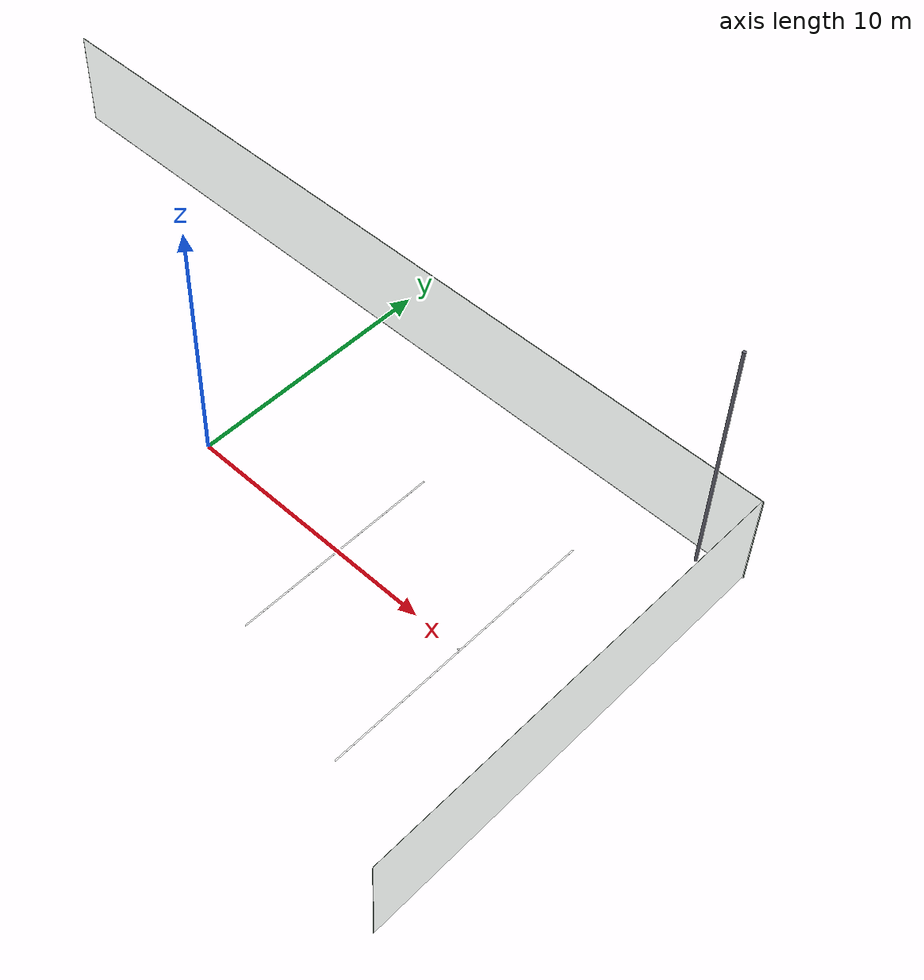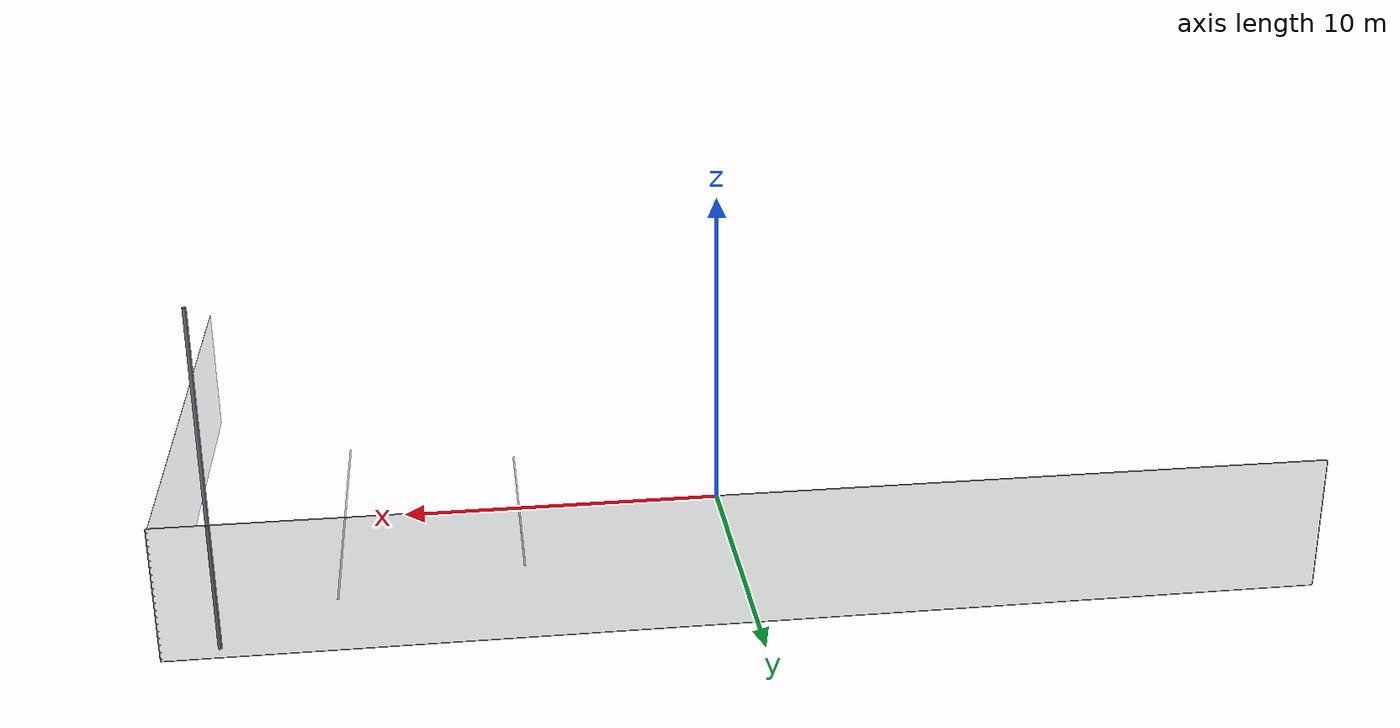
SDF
<sdf version="1.9">
 <model name="tennis_court">
  <static>true</static>
  <link name="baseline_east">
   <pose>11.885 0 0.001 0 0 0</pose>
   <visual name="v">
    <geometry><box><size>0.05 10.97 0.003</size></box></geometry>
    <material><ambient>0.96 0.96 0.96 1</ambient><diffuse>0.96 0.96 0.96 1</diffuse></material>
   </visual>
  </link>
  <link name="service_line_east">
   <pose>6.4 0 0.001 0 0 0</pose>
   <visual name="v">
    <geometry><box><size>0.05 8.23 0.003</size></box></geometry>
    <material><ambient>0.96 0.96 0.96 1</ambient><diffuse>0.96 0.96 0.96 1</diffuse></material>
   </visual>
  </link>
  <link name="centre_mark_east">
   <pose>11.835 0 0.001 0 0 0</pose>
   <visual name="v">
    <geometry><box><size>0.10 0.05 0.003</size></box></geometry>
    <material><ambient>0.96 0.96 0.96 1</ambient><diffuse>0.96 0.96 0.96 1</diffuse></material>
   </visual>
  </link>
  <link name="fence_east">
   <pose>16.5 0 0 0 0 -1.5708</pose>
   <collision name="col">
    <pose>0 0 2.0 0 0 0</pose>
    <geometry><box><size>17.0 0.08 4.0</size></box></geometry>
   </collision>
   <visual name="lidar_screen">
    <pose>0 0 2.0 0 0 0</pose>
    <geometry><box><size>17.0 0.02 4.0</size></box></geometry>
    <material><ambient>0.08 0.20 0.10 0.05</ambient><diffuse>0.08 0.20 0.10 0.05</diffuse></material>
    <transparency>0.95</transparency>
   </visual>
   <visual name="v">
    <geometry><mesh><uri>model://tennis_court/meshes/fence_long.dae</uri></mesh></geometry>
    <material>
     <double_sided>true</double_sided>
     <ambient>0.06 0.16 0.08 0.88</ambient>
     <diffuse>0.08 0.20 0.10 0.88</diffuse>
     <specular>0.04 0.08 0.04 1</specular>
    </material>
   </visual>
  </link>
  <link name="fence_north">
   <pose>0 8.5 0 0 0 0</pose>
   <collision name="col">
    <pose>0 0 2.0 0 0 0</pose>
    <geometry><box><size>33.08 0.08 4.0</size></box></geometry>
   </collision>
   <visual name="lidar_screen">
    <pose>0 0 2.0 0 0 0</pose>
    <geometry><box><size>33.08 0.02 4.0</size></box></geometry>
    <material><ambient>0.08 0.20 0.10 0.05</ambient><diffuse>0.08 0.20 0.10 0.05</diffuse></material>
    <transparency>0.95</transparency>
   </visual>
   <visual name="v">
    <geometry><mesh><uri>model://tennis_court/meshes/fence_wide.dae</uri></mesh></geometry>
    <material>
     <double_sided>true</double_sided>
     <ambient>0.06 0.16 0.08 0.88</ambient>
     <diffuse>0.08 0.20 0.10 0.88</diffuse>
     <specular>0.04 0.08 0.04 1</specular>
    </material>
   </visual>
  </link>
  <link name="pole_ne">
   <pose>15.0 8.0 5.0 0 0 0</pose>
   <collision name="col">
    <geometry><cylinder><radius>0.06</radius><length>10.0</length></cylinder></geometry>
   </collision>
   <visual name="v">
    <geometry><cylinder><radius>0.06</radius><length>10.0</length></cylinder></geometry>
    <material><ambient>0.35 0.35 0.40 1</ambient><diffuse>0.4 0.4 0.45 1</diffuse></material>
   </visual>
  </link>
 </model>
</sdf>
